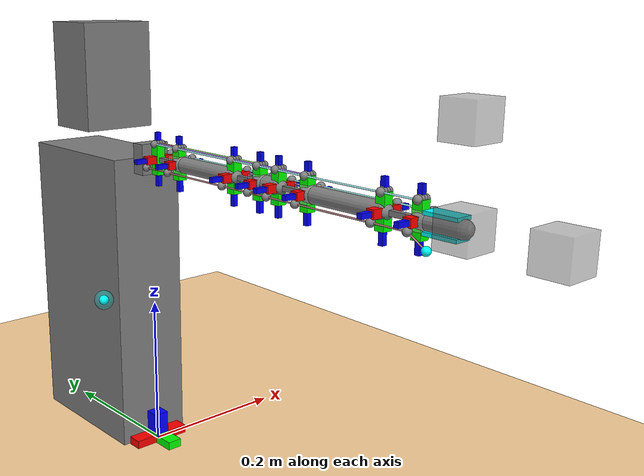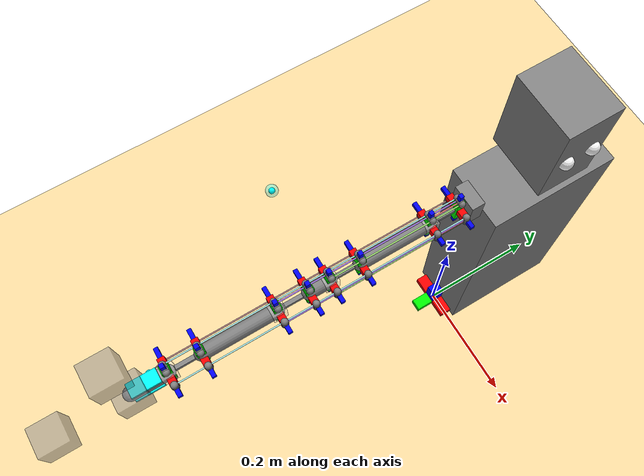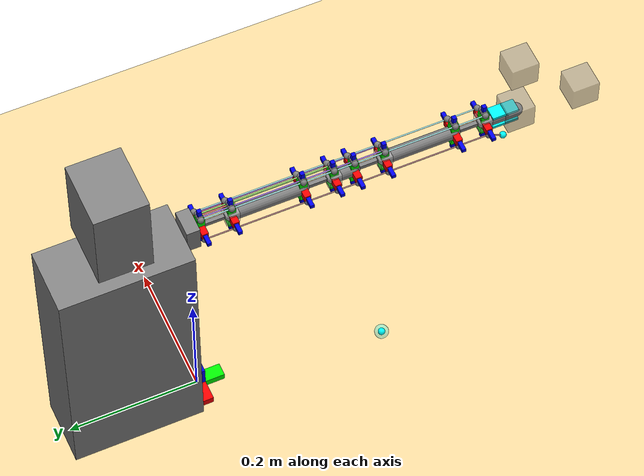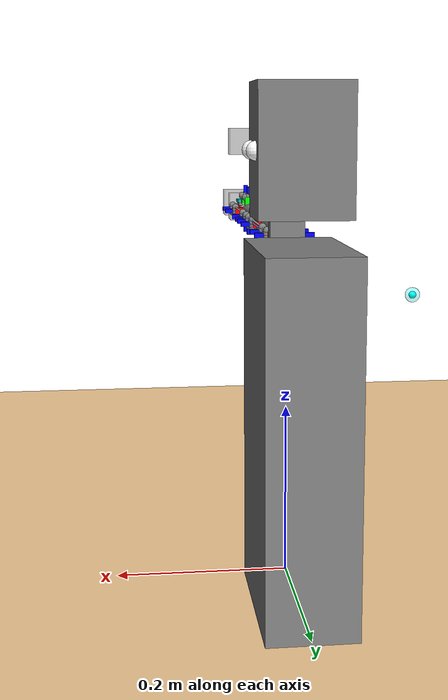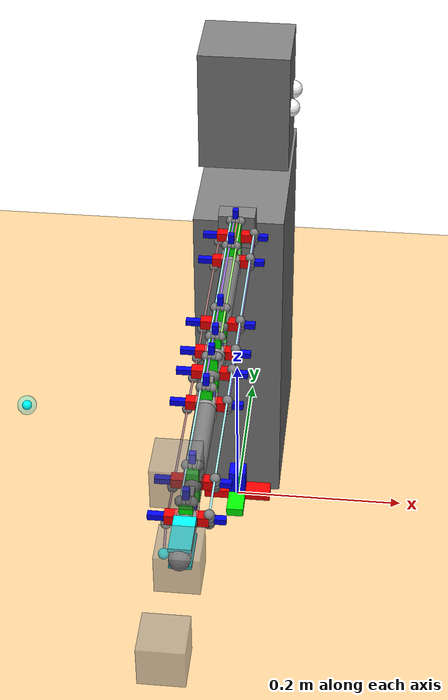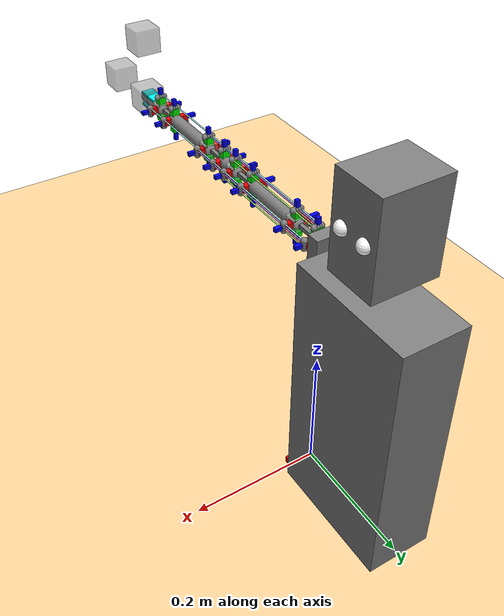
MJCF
<mujoco>

<!-- Default-Parameter für Geometrien -->
<default>
    <geom density="300"/>
</default>

<!-- Simulationsoptionen -->
<option gravity="0 0 0"/>

<!-- Compiler- und Asset-Einstellungen -->
<compiler angle="radian" meshdir="." autolimits="true"/>
<asset>
    <!-- Optional: STL-Modelle hier einfügen -->
</asset>

<visual>
    <global
        fovy="2"
        azimuth="135"
        elevation="-35.264"/>
        <!-- isometrische Draufsicht --><!-- winziger Öffnungswinkel (°) --><!-- ≈ atan(1/√2) -->
</visual>

<worldbody>

    <camera name="iso_cam"
            pos="1 1 1"
            euler="0 -35.264 135"
            fovy="2"/>

    <!-- Lichtquelle -->
    <light directional="true" pos="-0.5 0.5 3" dir="0 0 -1" />

    <!-- Boden (Tischplatte) -->
    <geom name="table" type="plane" pos="0 0 0" size="1 1 1" rgba="1 0.83 0.61 0.5"/>

    <!-- Orientierungshilfen (Achsen) -->
    <geom name="x-axis" type="box" size="0.04 0.01 0.01" rgba="1 0 0 1" contype="0" conaffinity="0"/>
    <geom name="y-axis" type="box" size="0.01 0.04 0.01" rgba="0 1 0 1" contype="0" conaffinity="0"/>
    <geom name="z-axis" type="box" size="0.01 0.01 0.04" rgba="0 0 1 1" contype="0" conaffinity="0"/>

    <!-- ROBOT Körper -->
    <geom name="robot" type="box" size="0.05 0.1 0.2" pos="0 0.11 0.2" rgba="0.5 0.5 0.5 1" contype="0" conaffinity="0"/>

    <!-- ROBOT Kopf -->
    <geom name="head" type="box" size="0.05 0.04 0.07" pos="0 0.11 0.5" rgba="0.5 0.5 0.5 1" contype="0" conaffinity="0"/>

    <!-- ROBOT Augen -->
    <geom name="eye_left"  type="sphere" size="0.01" pos="0.05 0.09 0.5" rgba="1 1 1 1" contype="0" conaffinity="0"/>
    <geom name="eye_right" type="sphere" size="0.01" pos="0.05 0.13 0.5" rgba="1 1 1 1" contype="0" conaffinity="0"/>

	<!-- Rotate 90° around X axis and place the arm 40 cm above table surface -->
	<body name="arm_base" pos="0 0 0.4" euler="1.5708 0 0">
		<geom name="arm_base_geom" type="box" size="0.02 0.02 0.01" rgba="0.5 0.5 0.5 1" contype="0" conaffinity="0"/>

		<!-- Arm rotation around Z axis -->
		<body name="arm_rot" pos="0 0 0">
			<joint name="arm_z_joint" type="hinge" axis="0 0 1" pos="0 0 0" damping="0.01" range="-3.14 3.14"/>

			<!-- Base of shoulder joint after arm rotation-->
			<body name="shoulder_base" pos="0 0 0">
				<geom name="shoulder_base_geom" type="box" size="0.02 0.02 0.01" rgba="0.5 0.5 0.5 1" contype="0" conaffinity="0"/>

				<!-- Shoulder frame with tendon anchors -->
				<body name="shoulder_frame" pos="0 0 0.04">
					<geom name="shoulder_frame_x" type="box" size="0.003" fromto="-.035 0 -.023 .035 0 -.023" rgba="0 0 1 1" contype="0" conaffinity="0"/>
					<geom name="shoulder_frame_y" type="box" size="0.003" fromto="0 -.035 -.023 0 .035 -.023" rgba="0 0 1 1" contype="0" conaffinity="0"/>

					<!-- Tendon anchors (8 starts + 1 gripper) -->
					<site name="sh_tendon_gripper"        pos=" -0.0186 -0.0087  -0.023" size="0.005 "/>
					<site name="sh_tendon_x_start_1"      pos=" 0.0204 -0.0018  -0.023" size="0.005 "/>
					<site name="sh_tendon_x_start_2"      pos=" 0.0198 -0.0053  -0.023" size="0.005 "/>
					<site name="sh_tendon_x_start_3"      pos=" 0.0204  0.0018  -0.023" size="0.005 "/>
					<site name="sh_tendon_x_start_4"      pos=" 0.0198  0.0053  -0.023" size="0.005 "/>
					<site name="sh_tendon_y_start_1"      pos=" 0.0018  0.0204  -0.023" size="0.005 "/>
					<site name="sh_tendon_y_start_2"      pos=" 0.0053  0.0198  -0.023" size="0.005 "/>
					<site name="sh_tendon_y_start_3"      pos=" -0.0018 0.0204  -0.023" size="0.005 "/>
					<site name="sh_tendon_y_start_4"      pos=" -0.0053 0.0198  -0.023" size="0.005 "/>

                    <body name="shoulder_xjoint1" pos="0 0 0">
                        <geom name="shoulder_xjoint1" type="box" size=".005" fromto="-.02 0 -.023 .02 0 -.023" rgba="1 0 0 1" contype="0" conaffinity="0"/>
                        <joint name="shoulder_xjoint1" type="hinge" axis="1 0 0" pos="0 0 -.023" damping="0.02" range="-0.7854 0.7854"/>

                        <body name="shoulder_yjoint1" pos="0 0 0">
                            <geom name="shoulder_connector" type="box" size=".003" fromto="0 0 -.023 0 0 .023" rgba=".5 .5 .5 1" contype="0" conaffinity="0"/>
                            <geom name="shoulder_yjoint1" type="box" size=".006" fromto="0 0.02 -.023 0 -0.02 -.023" rgba="0 1 0 1" contype="0" conaffinity="0"/>
                            <joint name="shoulder_yjoint1" type="hinge" axis="0 1 0" pos="0 0 -.023" damping="0.02" range="-0.7854 0.7854"/>

                            <geom name="shoulder_yjoint2" type="box" size=".006" fromto="0 0.02 .023 0 -0.02 .023" rgba="0 1 0 1" contype="0" conaffinity="0"/>
                            <body name="shoulder_yjoint2" pos="0 0 0">
                                <joint name="shoulder_yjoint2" type="hinge" axis="0 1 0" pos="0 0 .023" damping="0.02" range="-0.7854 0.7854"/>

                                <geom name="shoulder_xjoint2" type="box" size=".005" fromto="-.02 0 .023 .02 0 .023" rgba="1 0 0 1" contype="0" conaffinity="0"/>
                                <body name="shoulder_end" pos="0 0 .023">
                                    <geom name="shoulder_box" type="box" size=".01 .01 .01" rgba="1 1 1 .3" contype="0" conaffinity="0" mass="0"/>
                                    <joint name="shoulder_xjoint2" type="hinge" axis="1 0 0" pos="0 0 0" damping="0.02" range="-0.7854 0.7854"/>
                                    <geom name="endframex" type="box" size=".003" fromto="-.035 0 0 .035 0 0" rgba="0 0 1 1" contype="0" conaffinity="0"/>
                                    <geom name="endframey" type="box" size=".003" fromto="0 -.035 0 0 .035 0" rgba="0 0 1 1" contype="0" conaffinity="0"/>
                                    <!-- Seilanker (8 Endpunkte + 1* gripper) -->
                                    <site name="sh_tendon_gripper_end"     pos=" -0.0186 -0.0087  0.0" size="0.005"/>
                                    <site name="sh_tendon_x_end_1"         pos=" 0.0204 -0.0018  0.0" size="0.005"/>
                                    <site name="sh_tendon_x_end_2"         pos=" 0.0198 -0.0053  0.0" size="0.005"/>
                                    <site name="sh_tendon_x_end_3"         pos=" 0.0204  0.0018  0.0" size="0.005"/>
                                    <site name="sh_tendon_x_end_4"         pos=" 0.0198  0.0053  0.0" size="0.005"/>
                                    <site name="sh_tendon_y_end_1"         pos=" 0.0018  0.0204  0.0" size="0.005"/>
                                    <site name="sh_tendon_y_end_2"         pos=" 0.0053  0.0198  0.0" size="0.005"/>
                                    <site name="sh_tendon_y_end_3"         pos=" -0.0018 0.0204  0.0" size="0.005"/>
                                    <site name="sh_tendon_y_end_4"         pos=" -0.0053 0.0198  0.0" size="0.005"/>

                                    <!-- Connector between shoulder and elbow -->
                                    <geom name="link_shoulder_elbow1" type="capsule" fromto="0 0 0 0 0 0.107" size="0.01" rgba="0.5 0.5 0.5 1" contype="0" conaffinity="0"/>

                                    <!-- ELBOW JOINT 1 -->
                                    <body name="elbow1base" pos="0 0 0.13">
                                        <geom name="elbow1framex" type="box" size=".003" fromto="-.035 0 -.023 .035 0 -.023" rgba="0 0 1 1" contype="0" conaffinity="0"/>
                                        <geom name="elbow1framey" type="box" size=".003" fromto="0 -.035 -.023 0 .035 -.023" rgba="0 0 1 1" contype="0" conaffinity="0"/>
                                        <!-- Seilanker el1 (8 Startpunkte + 1* gripper) -->
                                        <site name="el1_tendon_gripper"     pos=" -0.0186 -0.0087  -0.023" size="0.005 "/>
                                        <site name="el1_tendon_x_start_1"   pos=" 0.0204 -0.0018  -0.023" size="0.005 "/>
                                        <site name="el1_tendon_x_start_2"   pos=" 0.0198 -0.0053  -0.023" size="0.005 "/>
                                        <site name="el1_tendon_x_start_3"   pos=" 0.0204  0.0018  -0.023" size="0.005 "/>
                                        <site name="el1_tendon_x_start_4"   pos=" 0.0198  0.0053  -0.023" size="0.005 "/>
                                        <site name="el1_tendon_y_start_1"   pos=" 0.0018  0.0204  -0.023" size="0.005 "/>
                                        <site name="el1_tendon_y_start_2"   pos=" 0.0053  0.0198  -0.023" size="0.005 "/>
                                        <site name="el1_tendon_y_start_3"   pos=" -0.0018 0.0204  -0.023" size="0.005 "/>
                                        <site name="el1_tendon_y_start_4"   pos=" -0.0053 0.0198  -0.023" size="0.005 "/>

                                        <body name="elbow1_xjoint1" pos="0 0 0">
                                            <geom name="elbow1_xjoint1" type="box" size=".005" fromto="-.02 0 -.023 .02 0 -.023" rgba="1 0 0 1" contype="0" conaffinity="0"/>
                                            <joint name="elbow1_xjoint1" type="hinge" axis="1 0 0" pos="0 0 -.023" damping="0.02" range="-0.7854 0.7854" />
                                            <body name="elbow1_yjoint1" pos="0 0 0">
                                                <geom name="elbow1_connector" type="box" size=".003" fromto="0 0 -.023 0 0 .023" rgba=".5 .5 .5 1" contype="0" conaffinity="0"/>
                                                <geom name="elbow1_yjoint1" type="box" size=".006" fromto="0 0.02 -.023 0 -0.02 -.023" rgba="0 1 0 1" contype="0" conaffinity="0"/>
                                                <joint name="elbow1_yjoint1" type="hinge" axis="0 1 0" pos="0 0 -.023" damping="0.02" range="-0.7854 0.7854"/>
                                                <geom name="elbow1_yjoint2" type="box" size=".006" fromto="0 0.02 .023 0 -0.02 .023" rgba="0 1 0 1" contype="0" conaffinity="0"/>
                                                <body name="elbow1_yjoint2" pos="0 0 0">
                                                    <joint name="elbow1_yjoint2" type="hinge" axis="0 1 0" pos="0 0 .023" damping="0.02" range="-0.7854 0.7854"/>
                                                    <geom name="elbow1_xjoint2" type="box" size=".005" fromto="-.02 0 .023 .02 0 .023" rgba="1 0 0 1" contype="0" conaffinity="0"/>
                                                    <body name="elbow1_end" pos="0 0 .023">
                                                        <geom name="elbow1_box" type="box" size=".01 .01 .01" rgba="1 1 1 .3" contype="0" conaffinity="0" mass="0"/>
                                                        <joint name="elbow1_xjoint2" type="hinge" axis="1 0 0" pos="0 0 0" damping="0.02" range="-0.7854 0.7854"/>
                                                        <geom name="elbow1framex_end" type="box" size=".003" fromto="-.035 0 0 .035 0 0" rgba="0 0 1 1" contype="0" conaffinity="0"/>
                                                        <geom name="elbow1framey_end" type="box" size=".003" fromto="0 -.035 0 0 .035 0" rgba="0 0 1 1" contype="0" conaffinity="0"/>
                                                        <!-- Seilanker el1 (8 Endpunkte + 1* gripper) -->
                                                        <site name="el1_tendon_gripper_end"     pos=" -0.0186 -0.0087  0.0" size="0.005"/>
                                                        <site name="el1_tendon_x_end_1"         pos=" 0.0204 -0.0018  0.0" size="0.005"/>
                                                        <site name="el1_tendon_x_end_2"         pos=" 0.0198 -0.0053  0.0" size="0.005"/>
                                                        <site name="el1_tendon_x_end_3"         pos=" 0.0204  0.0018  0.0" size="0.005"/>
                                                        <site name="el1_tendon_x_end_4"         pos=" 0.0198  0.0053  0.0" size="0.005"/>
                                                        <site name="el1_tendon_y_end_1"         pos=" 0.0018  0.0204  0.0" size="0.005"/>
                                                        <site name="el1_tendon_y_end_2"         pos=" 0.0053  0.0198  0.0" size="0.005"/>
                                                        <site name="el1_tendon_y_end_3"         pos=" -0.0018 0.0204  0.0" size="0.005"/>
                                                        <site name="el1_tendon_y_end_4"         pos=" -0.0053 0.0198  0.0" size="0.005"/>

                                                        <!--Connector between elbow1 and elbow2-->
                                                        <geom name="link_elbow1_elbow2" type="capsule" fromto="0 0 0 0 0 0.031" size="0.01" rgba="0.5 0.5 0.5 1" contype="0" conaffinity="0"/>
                                                        <site  name="elbow_site" pos="0 0 0.0155" size="0.01" rgba="0 1 1 1"/>
                                                        <!-- ELBOW JOINT 2 -->
                                                        <body name="elbow2base" pos="0 0 0.054">
                                                            <geom name="elbow2framex" type="box" size=".003" fromto="-.035 0 -.023 .035 0 -.023" rgba="0 0 1 1" contype="0" conaffinity="0"/>
                                                            <geom name="elbow2framey" type="box" size=".003" fromto="0 -.035 -.023 0 .035 -.023" rgba="0 0 1 1" contype="0" conaffinity="0"/>
                                                            <!-- Seilanker el2 (8 Startpunkte + 1* gripper) -->
                                                            <site name="el2_tendon_gripper"     pos=" -0.0186 -0.0087  -0.023" size="0.005 "/>
                                                            <site name="el2_tendon_x_start_1"   pos=" 0.0204 -0.0018  -0.023" size="0.005 "/>
                                                            <site name="el2_tendon_x_start_2"   pos=" 0.0198 -0.0053  -0.023" size="0.005 "/>
                                                            <site name="el2_tendon_x_start_3"   pos=" 0.0204  0.0018  -0.023" size="0.005 "/>
                                                            <site name="el2_tendon_x_start_4"   pos=" 0.0198  0.0053  -0.023" size="0.005 "/>
                                                            <site name="el2_tendon_y_start_1"   pos=" 0.0018  0.0204  -0.023" size="0.005 "/>
                                                            <site name="el2_tendon_y_start_2"   pos=" 0.0053  0.0198  -0.023" size="0.005 "/>
                                                            <site name="el2_tendon_y_start_3"   pos=" -0.0018 0.0204  -0.023" size="0.005 "/>
                                                            <site name="el2_tendon_y_start_4"   pos=" -0.0053 0.0198  -0.023" size="0.005 "/>

                                                            <body name="elbow2_xjoint1" pos="0 0 0">
                                                                <geom name="elbow2_xjoint1" type="box" size=".005" fromto="-.02 0 -.023 .02 0 -.023" rgba="1 0 0 1" contype="0" conaffinity="0"/>
                                                                <joint name="elbow2_xjoint1" type="hinge" axis="1 0 0" pos="0 0 -.023" damping="0.02" range="-0.7854 0.7854"/>
                                                                <body name="elbow2_yjoint1" pos="0 0 0">
                                                                    <geom name="elbow2_connector" type="box" size=".003" fromto="0 0 -.023 0 0 .023" rgba=".5 .5 .5 1" contype="0" conaffinity="0"/>
                                                                    <geom name="elbow2_yjoint1" type="box" size=".006" fromto="0 0.02 -.023 0 -0.02 -.023" rgba="0 1 0 1" contype="0" conaffinity="0"/>
                                                                    <joint name="elbow2_yjoint1" type="hinge" axis="0 1 0" pos="0 0 -.023" damping="0.02" range="-0.7854 0.7854"/>
                                                                    <geom name="elbow2_yjoint2" type="box" size=".006" fromto="0 0.02 .023 0 -0.02 .023" rgba="0 1 0 1" contype="0" conaffinity="0"/>
                                                                    <body name="elbow2_yjoint2" pos="0 0 0">
                                                                        <joint name="elbow2_yjoint2" type="hinge" axis="0 1 0" pos="0 0 .023" damping="0.02" range="-0.7854 0.7854"/>
                                                                        <geom name="elbow2_xjoint2" type="box" size=".005" fromto="-.02 0 .023 .02 0 .023" rgba="1 0 0 1" contype="0" conaffinity="0"/>
                                                                        <body name="elbow2_end" pos="0 0 .023">
                                                                            <geom name="elbow2_box" type="box" size=".01 .01 .01" rgba="1 1 1 .3" contype="0" conaffinity="0" mass="0"/>
                                                                            <joint name="elbow2_xjoint2" type="hinge" axis="1 0 0" pos="0 0 0" damping="0.02" range="-0.7854 0.7854"/>
                                                                            <geom name="elbow2framex_end" type="box" size=".003" fromto="-.035 0 0 .035 0 0" rgba="0 0 1 1" contype="0" conaffinity="0"/>
                                                                            <geom name="elbow2framey_end" type="box" size=".003" fromto="0 -.035 0 0 .035 0" rgba="0 0 1 1" contype="0" conaffinity="0"/>
                                                                            <!-- Seilanker el2 (8 Endpunkte + 1* gripper) -->
                                                                            <site name="el2_tendon_gripper_end"     pos=" -0.0186 -0.0087  0.0" size="0.005"/>
                                                                            <site name="el2_tendon_x_end_1"         pos=" 0.0204 -0.0018  0.0" size="0.005"/>
                                                                            <site name="el2_tendon_x_end_2"         pos=" 0.0198 -0.0053  0.0" size="0.005"/>
                                                                            <site name="el2_tendon_x_end_3"         pos=" 0.0204  0.0018  0.0" size="0.005"/>
                                                                            <site name="el2_tendon_x_end_4"         pos=" 0.0198  0.0053  0.0" size="0.005"/>
                                                                            <site name="el2_tendon_y_end_1"         pos=" 0.0018  0.0204  0.0" size="0.005"/>
                                                                            <site name="el2_tendon_y_end_2"         pos=" 0.0053  0.0198  0.0" size="0.005"/>
                                                                            <site name="el2_tendon_y_end_3"         pos=" -0.0018 0.0204  0.0" size="0.005"/>
                                                                            <site name="el2_tendon_y_end_4"         pos=" -0.0053 0.0198  0.0" size="0.005"/>

                                                                            <!--Connector between elbow2 and wrist-->
                                                                            <geom name="link_elbow2_wrist" type="capsule" fromto="0 0 0 0 0 0.107" size="0.01" rgba="0.5 0.5 0.5 1" contype="0" conaffinity="0"/>

                                                                            <!-- WRIST JOINT -->

                                                                            <body name="wristbase" pos="0 0 0.13">
                                                                                <geom name="wristframex" type="box" size=".003" fromto="-.035 0 -.023 .035 0 -.023" rgba="0 0 1 1" contype="0" conaffinity="0"/>
                                                                                <geom name="wristframey" type="box" size=".003" fromto="0 -.035 -.023 0 .035 -.023" rgba="0 0 1 1" contype="0" conaffinity="0"/>
                                                                            <!-- Seilanker wr (8 Startpunkte + 1* gripper) -->
                                                                            <site name="wr_tendon_gripper"     pos=" -0.0186 -0.0087  -0.023" size="0.005 "/>
                                                                            <site name="wr_tendon_x_start_1"   pos=" 0.0204 -0.0018  -0.023" size="0.005 "/>
                                                                            <site name="wr_tendon_x_start_2"   pos=" 0.0198 -0.0053  -0.023" size="0.005 "/>
                                                                            <site name="wr_tendon_x_start_3"   pos=" 0.0204  0.0018  -0.023" size="0.005 "/>
                                                                            <site name="wr_tendon_x_start_4"   pos=" 0.0198  0.0053  -0.023" size="0.005 "/>
                                                                            <site name="wr_tendon_y_start_1"   pos=" 0.0018  0.0204  -0.023" size="0.005 "/>
                                                                            <site name="wr_tendon_y_start_2"   pos=" 0.0053  0.0198  -0.023" size="0.005 "/>
                                                                            <site name="wr_tendon_y_start_3"   pos=" -0.0018 0.0204  -0.023" size="0.005 "/>
                                                                            <site name="wr_tendon_y_start_4"   pos=" -0.0053 0.0198  -0.023" size="0.005 "/>

                                                                                <body name="wrist_xjoint1" pos="0 0 0">
                                                                                    <geom name="wrist_xjoint1" type="box" size=".005" fromto="-.02 0 -.023 .02 0 -.023" rgba="1 0 0 1" contype="0" conaffinity="0"/>
                                                                                    <joint name="wrist_xjoint1" type="hinge" axis="1 0 0" pos="0 0 -.023" damping="0.02" range="-0.7854 0.7854"/>
                                                                                    <body name="wrist_yjoint1" pos="0 0 0">
                                                                                        <geom name="wrist_connector" type="box" size=".003" fromto="0 0 -.023 0 0 .023" rgba=".5 .5 .5 1" contype="0" conaffinity="0"/>
                                                                                        <geom name="wrist_yjoint1" type="box" size=".006" fromto="0 0.02 -.023 0 -0.02 -.023" rgba="0 1 0 1" contype="0" conaffinity="0"/>
                                                                                        <joint name="wrist_yjoint1" type="hinge" axis="0 1 0" pos="0 0 -.023" damping="0.02" range="-0.7854 0.7854"/>
                                                                                        <geom name="wrist_yjoint2" type="box" size=".006" fromto="0 0.02 .023 0 -0.02 .023" rgba="0 1 0 1" contype="0" conaffinity="0"/>
                                                                                        <body name="wrist_yjoint2" pos="0 0 0">
                                                                                            <joint name="wrist_yjoint2" type="hinge" axis="0 1 0" pos="0 0 .023" damping="0.02" range="-0.7854 0.7854"/>
                                                                                            <geom name="wrist_xjoint2" type="box" size=".005" fromto="-.02 0 .023 .02 0 .023" rgba="1 0 0 1" contype="0" conaffinity="0"/>
                                                                                            <body name="wrist_end" pos="0 0 .023">
                                                                                                <geom name="wrist_box" type="box" size=".01 .01 .01" rgba="1 1 1 .3" contype="0" conaffinity="0" mass="0"/>
                                                                                                <joint name="wrist_xjoint2" type="hinge" axis="1 0 0" pos="0 0 0" damping="0.02" range="-0.7854 0.7854"/>
                                                                                                <geom name="wristframex_end" type="box" size=".003" fromto="-.035 0 0 .035 0 0" rgba="0 0 1 1" contype="0" conaffinity="0"/>
                                                                                                <geom name="wristframey_end" type="box" size=".003" fromto="0 -.035 0 0 .035 0" rgba="0 0 1 1" contype="0" conaffinity="0"/>
                                                                                                <!-- Seilanker wr (8 Endpunkte + 1* gripper) -->
                                                                                                <site name="wr_tendon_gripper_end"     pos=" -0.0186 -0.0087  0.0" size="0.005"/>
                                                                                                <site name="wr_tendon_x_end_1"         pos=" 0.0204 -0.0018  0.0" size="0.005"/>
                                                                                                <site name="wr_tendon_x_end_2"         pos=" 0.0198 -0.0053  0.0" size="0.005"/>
                                                                                                <site name="wr_tendon_x_end_3"         pos=" 0.0204  0.0018  0.0" size="0.005"/>
                                                                                                <site name="wr_tendon_x_end_4"         pos=" 0.0198  0.0053  0.0" size="0.005"/>
                                                                                                <site name="wr_tendon_y_end_1"         pos=" 0.0018  0.0204  0.0" size="0.005"/>
                                                                                                <site name="wr_tendon_y_end_2"         pos=" 0.0053  0.0198  0.0" size="0.005"/>
                                                                                                <site name="wr_tendon_y_end_3"         pos=" -0.0018 0.0204  0.0" size="0.005"/>
                                                                                                <site name="wr_tendon_y_end_4"         pos=" -0.0053 0.0198  0.0" size="0.005"/>

                                                                                                <!--Connector between wrist and hand-->
                                                                                                <geom name="link_wrist_hand" type="capsule" fromto="0 0 0 0 0 0.05" size="0.01" rgba="0.5 0.5 0.5 1" contype="0" conaffinity="0"/>
                                                                                                <body name="griperrotation" euler= "0 0 -1.5708">
                                                                                                    <geom name="gripperfix" type="box" size=".002 .01 .02" pos = "-.01 0 .03" rgba="0 1 1 1" contype="0" conaffinity="0" />
                                                                                                    <!--gripper-->
                                                                                                    <body name="gripper" pos="0 0 0.0">
                                                                                                        <joint name="gripper" type="hinge" axis="0 1 0" pos="0 0 0.024" damping="0.02" range="-0.7854 0.7854"/>
                                                                                                        <geom name="gripper" type="box" size=".002 .01 .02" pos = ".01 0 .03" rgba="0 1 1 1" contype="0" conaffinity="0"  />
                                                                                                        <site name="gripper_site" pos="0.023 -0.018 0.023" size="0.005" rgba="0 1 1 1"/>
                                                                                                    </body>
                                                                                                </body>

                                                                                                <!-- HAND EEF Site-->
                                                                                                <body name="handbase" pos="0 0 0.05">
                                                                                                    <body name="eef_body1" pos="0 0 0">
                                                                                                        <geom name="eef_geom1" type="box" size=".01 .01 .01" rgba=".5 .5 .5 .5" contype="0" conaffinity="0"/>
                                                                                                    </body>
                                                                                                    <body name="eef_body2" pos="0 0.1 0 ">
                                                                                                        <geom name="eef_geom2" type="box" size=".01 .01 .01" rgba=".5 .5 .5 .5" contype="0" conaffinity="0"/>
                                                                                                    </body>
                                                                                                    <body name="eef_body3" pos="0 0 0.1 ">
                                                                                                        <geom name="eef_geom3" type="box" size=".01 .01 .01" rgba=".5 .5 .5 .5" contype="0" conaffinity="0"/>
                                                                                                    </body>
                                                                                                </body>
                                                                                            </body>
                                                                                        </body>
                                                                                    </body>
                                                                                </body>
                                                                            </body>
                                                                        </body>
                                                                    </body>
                                                                </body>
                                                            </body>
                                                        </body>
                                                    </body>
                                                </body>
                                            </body>
                                        </body>
                                    </body>
                                </body>
                            </body>
                        </body>
                    </body>
                </body>
            </body>
        </body>
	</body>

	<!-- Optional for spring-damper inverse kinematics (can be toggled via --) -->
	<!-- ik start -->

	<body name="elbow_target_body" pos="-.2 -0.2 0.3">
		<joint name="elbow_target_x" type="slide" axis="1 0 0" pos="0 0 0" damping="2"/>
		<joint name="elbow_target_y" type="slide" axis="0 1 0" pos="0 0 0" damping="2"/>
		<joint name="elbow_target_z" type="slide" axis="0 0 1" pos="0 0 0" damping="2"/>
        <geom name="elbow_target_geom" type="sphere" size="0.01" rgba="0 1 1 0.3" contype="0" conaffinity="0" mass="0.001"/>
		<site name="elbow_target" pos="0 0 0" size="0.005" rgba="0 1 1 1"/>
	</body>

	<body name="target_body" pos="0 -0.496 0.4">
		<joint name="target_x" type="slide" axis="1 0 0" pos="0 0 0" damping="2" />
		<joint name="target_y" type="slide" axis="0 1 0" pos="0 0 0" damping="2" />
		<joint name="target_z" type="slide" axis="0 0 1" pos="0 0 0" damping="2" />
		<joint name="target_roll"  type="hinge" axis="1 0 0" pos="0 0 0" damping="0.2" range="-3.14 3.14"/>
		<joint name="target_pitch" type="hinge" axis="0 1 0" pos="0 0 0" damping="0.2" range="-3.14 3.14"/>
		<joint name="target_yaw"   type="hinge" axis="0 0 1" pos="0 0 0" damping="0.2" range="-3.14 3.14"/>

		<body name="target_body1" pos="0 0 0">
			<geom name="target_geom1" type="box" size=".02 .02 .02" rgba=".5 .5 .5 .5" contype="0" conaffinity="0"/>
		</body>
		<body name="target_body2" pos="0 0 0.1">
			<geom name="target_geom2" type="box" size=".02 .02 .02" rgba=".5 .5 .5 .5" contype="0" conaffinity="0"/>
		</body>
		<body name="target_body3" pos="0 -0.1 0">
			<geom name="target_geom3" type="box" size=".02 .02 .02" rgba=".5 .5 .5 .5" contype="0" conaffinity="0"/>
		</body>
	</body>
	<!-- ik end -->

</worldbody>

<equality>
    <!-- Couple the sub-joints of each rolling contact pair (X and Y) -->
    <joint joint1="shoulder_xjoint1" joint2="shoulder_xjoint2" polycoef="0 1 0 0 0" solref="0.002 0.5" solimp="0.95 0.98 0.001"/>
    <joint joint1="shoulder_yjoint1" joint2="shoulder_yjoint2" polycoef="0 1 0 0 0" solref="0.002 0.5" solimp="0.95 0.98 0.001"/>
    <joint joint1="elbow1_xjoint1"   joint2="elbow1_xjoint2"   polycoef="0 1 0 0 0" solref="0.002 0.5" solimp="0.95 0.98 0.001"/>
    <joint joint1="elbow1_yjoint1"   joint2="elbow1_yjoint2"   polycoef="0 1 0 0 0" solref="0.002 0.5" solimp="0.95 0.98 0.001"/>
    <joint joint1="elbow2_xjoint1"   joint2="elbow2_xjoint2"   polycoef="0 1 0 0 0" solref="0.002 0.5" solimp="0.95 0.98 0.001"/>
    <joint joint1="elbow2_yjoint1"   joint2="elbow2_yjoint2"   polycoef="0 1 0 0 0" solref="0.002 0.5" solimp="0.95 0.98 0.001"/>
    <joint joint1="wrist_xjoint1"    joint2="wrist_xjoint2"    polycoef="0 1 0 0 0" solref="0.002 0.5" solimp="0.95 0.98 0.001"/>
    <joint joint1="wrist_yjoint1"    joint2="wrist_yjoint2"    polycoef="0 1 0 0 0" solref="0.002 0.5" solimp="0.95 0.98 0.001"/>

    <!-- Coupling between elbow1 and elbow2 for IK (for forward kinematics, set values manually) -->
    <!-- ik start -->
    <joint joint1="elbow1_xjoint2" joint2="elbow2_xjoint1" polycoef="0 1 0 0 0" solref="0.01 1" solimp="0.95 0.98 0.001"/>
    <joint joint1="elbow1_yjoint2" joint2="elbow2_yjoint1" polycoef="0 1 0 0 0" solref="0.01 1" solimp="0.95 0.98 0.001"/>
	<!-- ik end -->

    <!-- Weld target and end-effector (EEF) sites for inverse kinematics -->
	<!-- ik start -->
    <weld body1="eef_body1" body2="target_body1" solref="0.05 0.5" solimp="0.95 0.99 0.001"/>
    <weld body1="eef_body2" body2="target_body2" solref="0.05 0.5" solimp="0.95 0.99 0.001"/>
    <weld body1="eef_body3" body2="target_body3" solref="0.05 0.5" solimp="0.95 0.99 0.001"/>
    <!-- ik end -->

	<!-- Inverse kinematics: weld elbow target and elbow with very loose coupling -->
	<!-- ik start -->
	<weld body1="elbow_target_body" body2="elbow1_end" solref="2 2" solimp="0.3 0.9 0.0005"/>
	<!-- ik end -->
</equality>

<tendon>
    <!-- Tendon set 1: shoulder -->
    <spatial name="tendon_x_1" width="0.001" rgba="1 .5 .5 1">
        <site site="sh_tendon_x_start_1"/>
        <site site="sh_tendon_x_end_1"/>
    </spatial>
    <spatial name="tendon_y_1" width="0.001" rgba="1 .5 .5 1">
        <site site="sh_tendon_y_start_1"/>
        <site site="sh_tendon_y_end_1"/>
    </spatial>

    <!-- Tendon set 2: shoulder + elbow1 -->
    <spatial name="tendon_x_2" width="0.001" rgba=".7 1 .5 1">
        <site site="sh_tendon_x_start_2"/>
        <site site="sh_tendon_x_end_2"/>
        <site site="el1_tendon_x_start_2"/>
        <site site="el1_tendon_x_end_2"/>
    </spatial>
    <spatial name="tendon_y_2" width="0.001" rgba=".7 1 .5 1">
        <site site="sh_tendon_y_start_2"/>
        <site site="sh_tendon_y_end_2"/>
        <site site="el1_tendon_y_start_2"/>
        <site site="el1_tendon_y_end_2"/>
    </spatial>

    <!-- Tendon set 3: shoulder + elbow1 + elbow2 -->
    <spatial name="tendon_x_3" width="0.001" rgba=".7 .5 1 1">
        <site site="sh_tendon_x_start_3"/>
        <site site="sh_tendon_x_end_3"/>
        <site site="el1_tendon_x_start_3"/>
        <site site="el1_tendon_x_end_3"/>
        <site site="el2_tendon_x_start_3"/>
        <site site="el2_tendon_x_end_3"/>
    </spatial>
    <spatial name="tendon_y_3" width="0.001" rgba=".7 .5 1 1">
        <site site="sh_tendon_y_start_3"/>
        <site site="sh_tendon_y_end_3"/>
        <site site="el1_tendon_y_start_3"/>
        <site site="el1_tendon_y_end_3"/>
        <site site="el2_tendon_y_start_3"/>
        <site site="el2_tendon_y_end_3"/>
    </spatial>

    <!-- Tendon set 4: full chain including wrist -->
    <spatial name="tendon_x_4" width="0.001" rgba=".7 1 1 1">
        <site site="sh_tendon_x_start_4"/>
        <site site="sh_tendon_x_end_4"/>
        <site site="el1_tendon_x_start_4"/>
        <site site="el1_tendon_x_end_4"/>
        <site site="el2_tendon_x_start_4"/>
        <site site="el2_tendon_x_end_4"/>
        <site site="wr_tendon_x_start_4"/>
        <site site="wr_tendon_x_end_4"/>
    </spatial>
    <spatial name="tendon_y_4" width="0.001" rgba=".7 1 1 1">
        <site site="sh_tendon_y_start_4"/>
        <site site="sh_tendon_y_end_4"/>
        <site site="el1_tendon_y_start_4"/>
        <site site="el1_tendon_y_end_4"/>
        <site site="el2_tendon_y_start_4"/>
        <site site="el2_tendon_y_end_4"/>
        <site site="wr_tendon_y_start_4"/>
        <site site="wr_tendon_y_end_4"/>
    </spatial>

    <!-- Gripper tendon through entire chain -->
    <spatial name="tendon_gripper" width="0.001" rgba=".7 .5 .5 1">
        <site site="sh_tendon_gripper"/>
        <site site="sh_tendon_gripper_end"/>
        <site site="el1_tendon_gripper"/>
        <site site="el1_tendon_gripper_end"/>
        <site site="el2_tendon_gripper"/>
        <site site="el2_tendon_gripper_end"/>
        <site site="wr_tendon_gripper"/>
        <site site="wr_tendon_gripper_end"/>
        <site site="gripper_site"/>
    </spatial>
</tendon>

<actuator>
    <!-- Optional inverse kinematics actuators (can be toggled) -->
    <!-- ik start -->
    <position name="target_x_motor"     joint="target_x"     ctrlrange="0 1"     kp="100"/>
    <position name="target_y_motor"     joint="target_y"     ctrlrange="0 1"     kp="100"/>
    <position name="target_z_motor"     joint="target_z"     ctrlrange="-.5 .5"  kp="100"/>
    <position name="target_roll_motor"  joint="target_roll"  ctrlrange="-3.2 3.2" kp="1"/>
    <position name="target_pitch_motor" joint="target_pitch" ctrlrange="-3.2 3.2" kp="1"/>
    <position name="target_yaw_motor"   joint="target_yaw"   ctrlrange="-3.2 3.2" kp="1"/>

    <position name="elbow_target_x" joint="elbow_target_x" ctrlrange="-1 1" kp="10"/>
    <position name="elbow_target_y" joint="elbow_target_y" ctrlrange="-1 1" kp="10"/>
    <position name="elbow_target_z" joint="elbow_target_z" ctrlrange="-1 1" kp="10"/>
    <!-- ik end -->

    <!-- Optional forward kinematics tendon actuators (can be toggled) -->

    <!-- Gripper actuator (always available) -->
    <position name="motor_gripper" joint="gripper" ctrlrange="-3.2 3.2" kp="0.1"/>
</actuator>

</mujoco>
